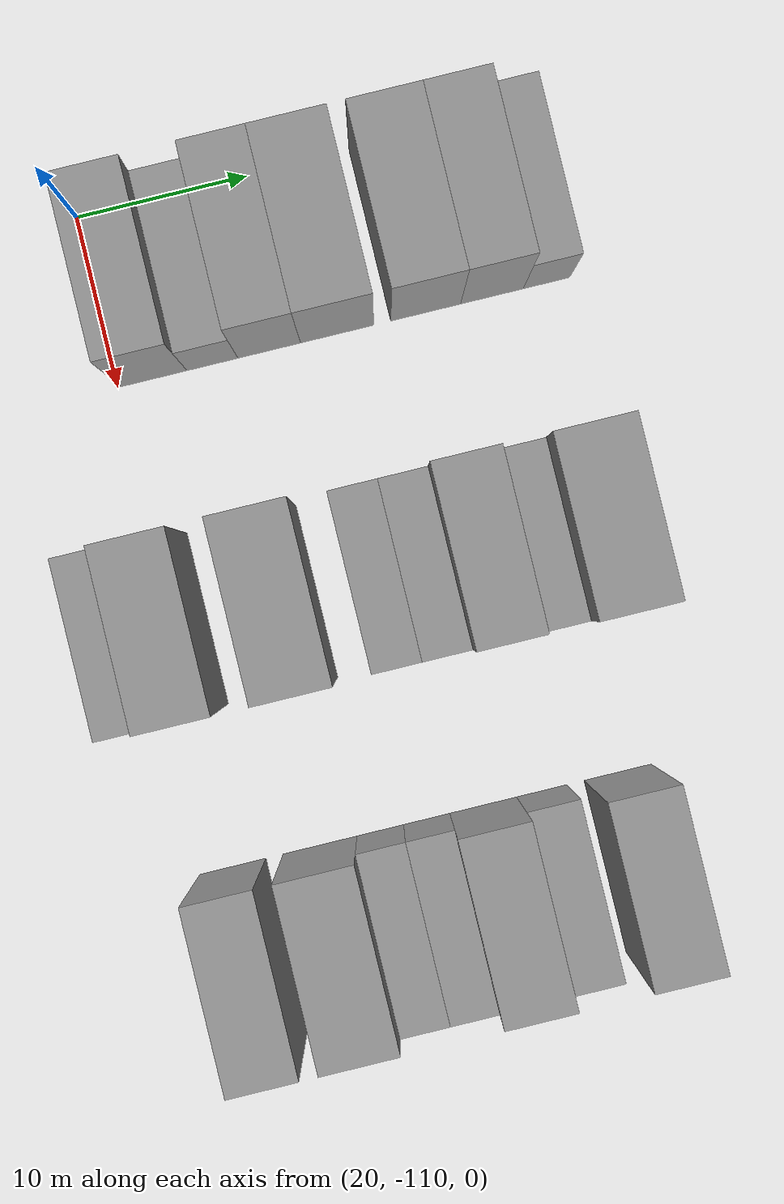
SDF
<sdf version="1.6">
 <world name="default">
  <model name="building_32">
   <static>1</static>
   <pose>25.0000 -107.8749 0 0.000000 0.000000 0.000000</pose>
   <link name="link">
    <pose>0 0 4.50 0 0 0</pose>
    <collision name="collision"><geometry><box><size>10.0000 3.8703 9.0000</size></box></geometry></collision>
    <visual name="visual">
     <cast_shadows>0</cast_shadows>
     <geometry><box><size>10.0000 3.8703 9.0000</size></box></geometry>
     <material>
      <script>
       <uri>model://grey_wall/materials/scripts</uri>
       <uri>model://grey_wall/materials/textures</uri>
       <name>vrc/grey_wall</name>
      </script>
     </material>
    </visual>
   </link>
  </model>
  <model name="building_33">
   <static>1</static>
   <pose>25.0000 -104.4467 0 0.000000 0.000000 0.000000</pose>
   <link name="link">
    <pose>0 0 3.00 0 0 0</pose>
    <collision name="collision"><geometry><box><size>10.0000 2.9861 6.0000</size></box></geometry></collision>
    <visual name="visual">
     <cast_shadows>0</cast_shadows>
     <geometry><box><size>10.0000 2.9861 6.0000</size></box></geometry>
     <material>
      <script>
       <uri>model://grey_wall/materials/scripts</uri>
       <uri>model://grey_wall/materials/textures</uri>
       <name>vrc/grey_wall</name>
      </script>
     </material>
    </visual>
   </link>
  </model>
  <model name="building_34">
   <static>1</static>
   <pose>25.0000 -101.1200 0 0.000000 0.000000 0.000000</pose>
   <link name="link">
    <pose>0 0 4.50 0 0 0</pose>
    <collision name="collision"><geometry><box><size>10.0000 3.6673 9.0000</size></box></geometry></collision>
    <visual name="visual">
     <cast_shadows>0</cast_shadows>
     <geometry><box><size>10.0000 3.6673 9.0000</size></box></geometry>
     <material>
      <script>
       <uri>model://grey_wall/materials/scripts</uri>
       <uri>model://grey_wall/materials/textures</uri>
       <name>vrc/grey_wall</name>
      </script>
     </material>
    </visual>
   </link>
  </model>
  <model name="building_35">
   <static>1</static>
   <pose>25.0000 -97.1471 0 0.000000 0.000000 0.000000</pose>
   <link name="link">
    <pose>0 0 4.50 0 0 0</pose>
    <collision name="collision"><geometry><box><size>10.0000 4.2785 9.0000</size></box></geometry></collision>
    <visual name="visual">
     <cast_shadows>0</cast_shadows>
     <geometry><box><size>10.0000 4.2785 9.0000</size></box></geometry>
     <material>
      <script>
       <uri>model://grey_wall/materials/scripts</uri>
       <uri>model://grey_wall/materials/textures</uri>
       <name>vrc/grey_wall</name>
      </script>
     </material>
    </visual>
   </link>
  </model>
  <model name="building_36">
   <static>1</static>
   <pose>25.0000 -91.9630 0 0.000000 0.000000 0.000000</pose>
   <link name="link">
    <pose>0 0 4.50 0 0 0</pose>
    <collision name="collision"><geometry><box><size>10.0000 4.0897 9.0000</size></box></geometry></collision>
    <visual name="visual">
     <cast_shadows>0</cast_shadows>
     <geometry><box><size>10.0000 4.0897 9.0000</size></box></geometry>
     <material>
      <script>
       <uri>model://grey_wall/materials/scripts</uri>
       <uri>model://grey_wall/materials/textures</uri>
       <name>vrc/grey_wall</name>
      </script>
     </material>
    </visual>
   </link>
  </model>
  <model name="building_37">
   <static>1</static>
   <pose>25.0000 -88.0747 0 0.000000 0.000000 0.000000</pose>
   <link name="link">
    <pose>0 0 4.50 0 0 0</pose>
    <collision name="collision"><geometry><box><size>10.0000 3.6870 9.0000</size></box></geometry></collision>
    <visual name="visual">
     <cast_shadows>0</cast_shadows>
     <geometry><box><size>10.0000 3.6870 9.0000</size></box></geometry>
     <material>
      <script>
       <uri>model://grey_wall/materials/scripts</uri>
       <uri>model://grey_wall/materials/textures</uri>
       <name>vrc/grey_wall</name>
      </script>
     </material>
    </visual>
   </link>
  </model>
  <model name="building_38">
   <static>1</static>
   <pose>25.0000 -84.8707 0 0.000000 0.000000 0.000000</pose>
   <link name="link">
    <pose>0 0 3.00 0 0 0</pose>
    <collision name="collision"><geometry><box><size>10.0000 2.7210 6.0000</size></box></geometry></collision>
    <visual name="visual">
     <cast_shadows>0</cast_shadows>
     <geometry><box><size>10.0000 2.7210 6.0000</size></box></geometry>
     <material>
      <script>
       <uri>model://grey_wall/materials/scripts</uri>
       <uri>model://grey_wall/materials/textures</uri>
       <name>vrc/grey_wall</name>
      </script>
     </material>
    </visual>
   </link>
  </model>
  <model name="building_142">
   <static>1</static>
   <pose>44.0000 -113.6048 0 0.000000 0.000000 0.000000</pose>
   <link name="link">
    <pose>0 0 3.00 0 0 0</pose>
    <collision name="collision"><geometry><box><size>10.0000 2.5561 6.0000</size></box></geometry></collision>
    <visual name="visual">
     <cast_shadows>0</cast_shadows>
     <geometry><box><size>10.0000 2.5561 6.0000</size></box></geometry>
     <material>
      <script>
       <uri>model://grey_wall/materials/scripts</uri>
       <uri>model://grey_wall/materials/textures</uri>
       <name>vrc/grey_wall</name>
      </script>
     </material>
    </visual>
   </link>
  </model>
  <model name="building_143">
   <static>1</static>
   <pose>44.0000 -110.2268 0 0.000000 0.000000 0.000000</pose>
   <link name="link">
    <pose>0 0 4.50 0 0 0</pose>
    <collision name="collision"><geometry><box><size>10.0000 4.1998 9.0000</size></box></geometry></collision>
    <visual name="visual">
     <cast_shadows>0</cast_shadows>
     <geometry><box><size>10.0000 4.1998 9.0000</size></box></geometry>
     <material>
      <script>
       <uri>model://grey_wall/materials/scripts</uri>
       <uri>model://grey_wall/materials/textures</uri>
       <name>vrc/grey_wall</name>
      </script>
     </material>
    </visual>
   </link>
  </model>
  <model name="building_144">
   <static>1</static>
   <pose>44.0000 -103.9332 0 0.000000 0.000000 0.000000</pose>
   <link name="link">
    <pose>0 0 4.50 0 0 0</pose>
    <collision name="collision"><geometry><box><size>10.0000 4.3876 9.0000</size></box></geometry></collision>
    <visual name="visual">
     <cast_shadows>0</cast_shadows>
     <geometry><box><size>10.0000 4.3876 9.0000</size></box></geometry>
     <material>
      <script>
       <uri>model://grey_wall/materials/scripts</uri>
       <uri>model://grey_wall/materials/textures</uri>
       <name>vrc/grey_wall</name>
      </script>
     </material>
    </visual>
   </link>
  </model>
  <model name="building_145">
   <static>1</static>
   <pose>44.0000 -98.3554 0 0.000000 0.000000 0.000000</pose>
   <link name="link">
    <pose>0 0 3.00 0 0 0</pose>
    <collision name="collision"><geometry><box><size>10.0000 2.7679 6.0000</size></box></geometry></collision>
    <visual name="visual">
     <cast_shadows>0</cast_shadows>
     <geometry><box><size>10.0000 2.7679 6.0000</size></box></geometry>
     <material>
      <script>
       <uri>model://grey_wall/materials/scripts</uri>
       <uri>model://grey_wall/materials/textures</uri>
       <name>vrc/grey_wall</name>
      </script>
     </material>
    </visual>
   </link>
  </model>
  <model name="building_146">
   <static>1</static>
   <pose>44.0000 -95.5888 0 0.000000 0.000000 0.000000</pose>
   <link name="link">
    <pose>0 0 3.00 0 0 0</pose>
    <collision name="collision"><geometry><box><size>10.0000 2.7652 6.0000</size></box></geometry></collision>
    <visual name="visual">
     <cast_shadows>0</cast_shadows>
     <geometry><box><size>10.0000 2.7652 6.0000</size></box></geometry>
     <material>
      <script>
       <uri>model://grey_wall/materials/scripts</uri>
       <uri>model://grey_wall/materials/textures</uri>
       <name>vrc/grey_wall</name>
      </script>
     </material>
    </visual>
   </link>
  </model>
  <model name="building_147">
   <static>1</static>
   <pose>44.0000 -92.2935 0 0.000000 0.000000 0.000000</pose>
   <link name="link">
    <pose>0 0 4.50 0 0 0</pose>
    <collision name="collision"><geometry><box><size>10.0000 3.8253 9.0000</size></box></geometry></collision>
    <visual name="visual">
     <cast_shadows>0</cast_shadows>
     <geometry><box><size>10.0000 3.8253 9.0000</size></box></geometry>
     <material>
      <script>
       <uri>model://grey_wall/materials/scripts</uri>
       <uri>model://grey_wall/materials/textures</uri>
       <name>vrc/grey_wall</name>
      </script>
     </material>
    </visual>
   </link>
  </model>
  <model name="building_148">
   <static>1</static>
   <pose>44.0000 -89.0748 0 0.000000 0.000000 0.000000</pose>
   <link name="link">
    <pose>0 0 3.00 0 0 0</pose>
    <collision name="collision"><geometry><box><size>10.0000 2.6122 6.0000</size></box></geometry></collision>
    <visual name="visual">
     <cast_shadows>0</cast_shadows>
     <geometry><box><size>10.0000 2.6122 6.0000</size></box></geometry>
     <material>
      <script>
       <uri>model://grey_wall/materials/scripts</uri>
       <uri>model://grey_wall/materials/textures</uri>
       <name>vrc/grey_wall</name>
      </script>
     </material>
    </visual>
   </link>
  </model>
  <model name="building_149">
   <static>1</static>
   <pose>44.0000 -85.5253 0 0.000000 0.000000 0.000000</pose>
   <link name="link">
    <pose>0 0 4.50 0 0 0</pose>
    <collision name="collision"><geometry><box><size>10.0000 4.4867 9.0000</size></box></geometry></collision>
    <visual name="visual">
     <cast_shadows>0</cast_shadows>
     <geometry><box><size>10.0000 4.4867 9.0000</size></box></geometry>
     <material>
      <script>
       <uri>model://grey_wall/materials/scripts</uri>
       <uri>model://grey_wall/materials/textures</uri>
       <name>vrc/grey_wall</name>
      </script>
     </material>
    </visual>
   </link>
  </model>
  <model name="building_265">
   <static>1</static>
   <pose>63.0000 -110.0564 0 0.000000 0.000000 0.000000</pose>
   <link name="link">
    <pose>0 0 4.50 0 0 0</pose>
    <collision name="collision"><geometry><box><size>10.0000 3.8596 9.0000</size></box></geometry></collision>
    <visual name="visual">
     <cast_shadows>0</cast_shadows>
     <geometry><box><size>10.0000 3.8596 9.0000</size></box></geometry>
     <material>
      <script>
       <uri>model://grey_wall/materials/scripts</uri>
       <uri>model://grey_wall/materials/textures</uri>
       <name>vrc/grey_wall</name>
      </script>
     </material>
    </visual>
   </link>
  </model>
  <model name="building_266">
   <static>1</static>
   <pose>63.0000 -104.9726 0 0.000000 0.000000 0.000000</pose>
   <link name="link">
    <pose>0 0 4.50 0 0 0</pose>
    <collision name="collision"><geometry><box><size>10.0000 4.3079 9.0000</size></box></geometry></collision>
    <visual name="visual">
     <cast_shadows>0</cast_shadows>
     <geometry><box><size>10.0000 4.3079 9.0000</size></box></geometry>
     <material>
      <script>
       <uri>model://grey_wall/materials/scripts</uri>
       <uri>model://grey_wall/materials/textures</uri>
       <name>vrc/grey_wall</name>
      </script>
     </material>
    </visual>
   </link>
  </model>
  <model name="building_267">
   <static>1</static>
   <pose>63.0000 -101.4547 0 0.000000 0.000000 0.000000</pose>
   <link name="link">
    <pose>0 0 3.00 0 0 0</pose>
    <collision name="collision"><geometry><box><size>10.0000 2.7279 6.0000</size></box></geometry></collision>
    <visual name="visual">
     <cast_shadows>0</cast_shadows>
     <geometry><box><size>10.0000 2.7279 6.0000</size></box></geometry>
     <material>
      <script>
       <uri>model://grey_wall/materials/scripts</uri>
       <uri>model://grey_wall/materials/textures</uri>
       <name>vrc/grey_wall</name>
      </script>
     </material>
    </visual>
   </link>
  </model>
  <model name="building_268">
   <static>1</static>
   <pose>63.0000 -98.7459 0 0.000000 0.000000 0.000000</pose>
   <link name="link">
    <pose>0 0 3.00 0 0 0</pose>
    <collision name="collision"><geometry><box><size>10.0000 2.6897 6.0000</size></box></geometry></collision>
    <visual name="visual">
     <cast_shadows>0</cast_shadows>
     <geometry><box><size>10.0000 2.6897 6.0000</size></box></geometry>
     <material>
      <script>
       <uri>model://grey_wall/materials/scripts</uri>
       <uri>model://grey_wall/materials/textures</uri>
       <name>vrc/grey_wall</name>
      </script>
     </material>
    </visual>
   </link>
  </model>
  <model name="building_269">
   <static>1</static>
   <pose>63.0000 -95.4466 0 0.000000 0.000000 0.000000</pose>
   <link name="link">
    <pose>0 0 4.50 0 0 0</pose>
    <collision name="collision"><geometry><box><size>10.0000 3.9090 9.0000</size></box></geometry></collision>
    <visual name="visual">
     <cast_shadows>0</cast_shadows>
     <geometry><box><size>10.0000 3.9090 9.0000</size></box></geometry>
     <material>
      <script>
       <uri>model://grey_wall/materials/scripts</uri>
       <uri>model://grey_wall/materials/textures</uri>
       <name>vrc/grey_wall</name>
      </script>
     </material>
    </visual>
   </link>
  </model>
  <model name="building_270">
   <static>1</static>
   <pose>63.0000 -92.0222 0 0.000000 0.000000 0.000000</pose>
   <link name="link">
    <pose>0 0 3.00 0 0 0</pose>
    <collision name="collision"><geometry><box><size>10.0000 2.9397 6.0000</size></box></geometry></collision>
    <visual name="visual">
     <cast_shadows>0</cast_shadows>
     <geometry><box><size>10.0000 2.9397 6.0000</size></box></geometry>
     <material>
      <script>
       <uri>model://grey_wall/materials/scripts</uri>
       <uri>model://grey_wall/materials/textures</uri>
       <name>vrc/grey_wall</name>
      </script>
     </material>
    </visual>
   </link>
  </model>
  <model name="building_271">
   <static>1</static>
   <pose>63.0000 -87.5895 0 0.000000 0.000000 0.000000</pose>
   <link name="link">
    <pose>0 0 4.50 0 0 0</pose>
    <collision name="collision"><geometry><box><size>10.0000 3.9258 9.0000</size></box></geometry></collision>
    <visual name="visual">
     <cast_shadows>0</cast_shadows>
     <geometry><box><size>10.0000 3.9258 9.0000</size></box></geometry>
     <material>
      <script>
       <uri>model://grey_wall/materials/scripts</uri>
       <uri>model://grey_wall/materials/textures</uri>
       <name>vrc/grey_wall</name>
      </script>
     </material>
    </visual>
   </link>
  </model>
 </world>
</sdf>
